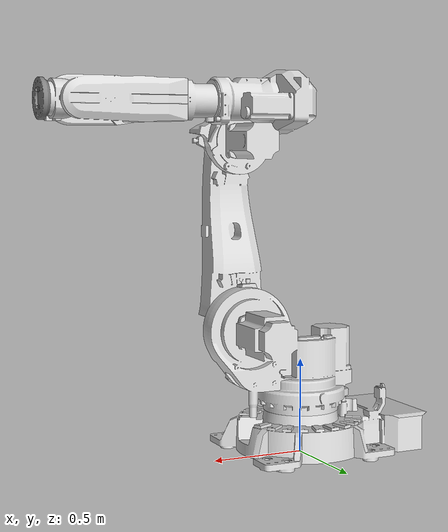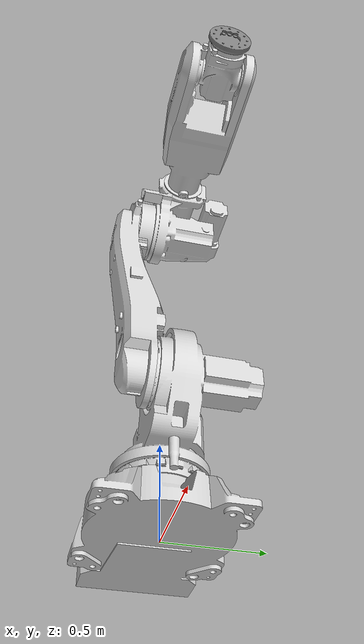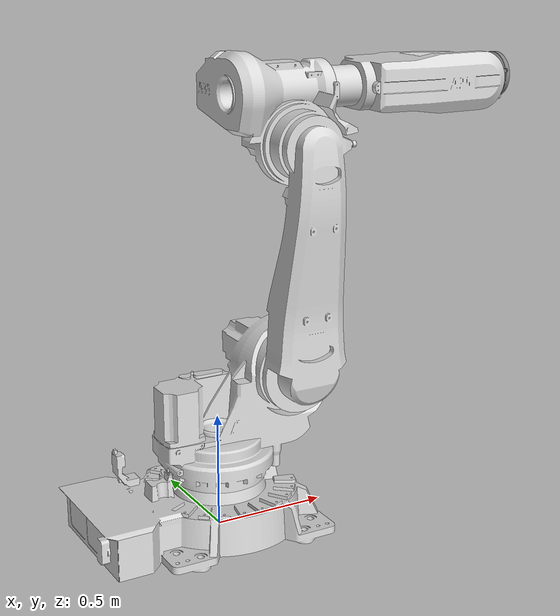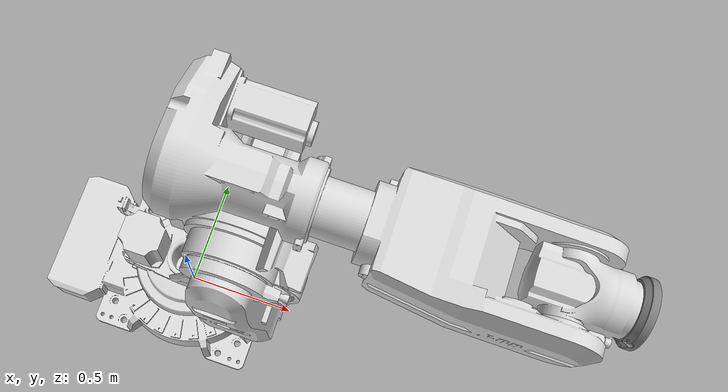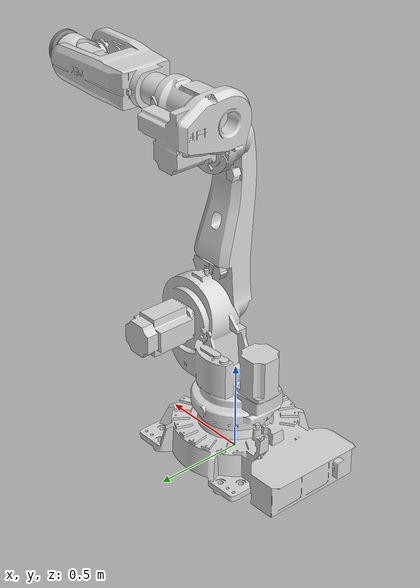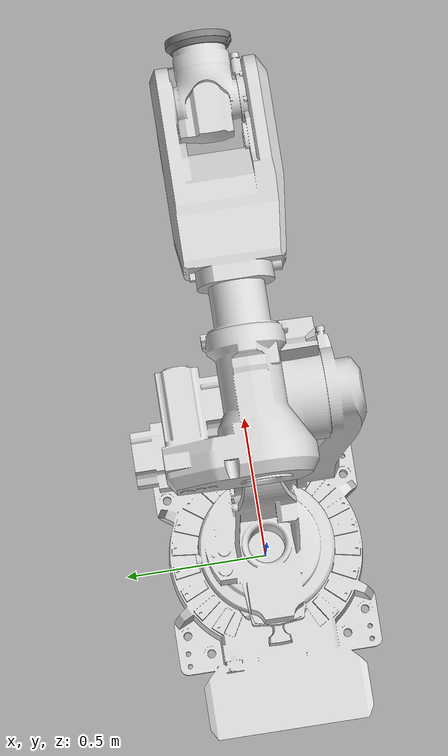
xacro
<?xml version="1.0" ?>
<robot name="irb6620" xmlns:xacro="http://www.ros.org/wiki/xacro">
  <xacro:arg name="use_fake_hardware" default="true"/>
  <xacro:property name="use_fake_hardware" value="$(arg use_fake_hardware)"/>
  <xacro:arg name="rws_ip" default="None"/>
  <xacro:property name="rws_ip" value="$(arg rws_ip)"/>
  <xacro:arg name="rws_port" default="80"/>
  <xacro:property name="rws_port" value="$(arg rws_port)"/>
  <xacro:arg name="configure_via_rws" default="true"/>
  <xacro:property name="configure_via_rws" value="$(arg configure_via_rws)"/>

  <!-- Robot description -->
  <xacro:include filename="$(find abb_irb6620_support)/urdf/materials.xacro" />
  <link name="base_link">
    <inertial>
      <origin xyz="-0.132426271542629 0.00025747943822749576 0.10729619546582686" rpy="0 0 0"/>
      <mass value="776.9359106593752"/>
      <inertia ixx="25.729826" iyy="53.397553" izz="73.957156" ixy="-0.030919" iyz="-0.078877" ixz="0.51906"/>
    </inertial>
    <visual>
      <origin xyz="0 0 0" rpy="0 0 0"/>
      <geometry>
        <mesh filename="package://abb_irb6620_support/meshes/base_link.stl" scale="0.001 0.001 0.001"/>
      </geometry>
      <material name="opaque215215215"/>
    </visual>
    <collision>
      <origin xyz="0 0 0" rpy="0 0 0"/>
      <geometry>
        <mesh filename="package://abb_irb6620_support/meshes/base_link.stl" scale="0.001 0.001 0.001"/>
      </geometry>
    </collision>
  </link>

  <link name="link2_1">
    <inertial>
      <origin xyz="0.0005479770874909917 -0.08783951896438288 0.4192832792190023" rpy="0 0 0"/>
      <mass value="322.6869494051032"/>
      <inertia ixx="31.332255" iyy="32.058389" izz="2.725277" ixy="0.002905" iyz="2.969817" ixz="-0.067522"/>
    </inertial>
    <visual>
      <origin xyz="-0.32 0.1305 -0.68" rpy="0 0 0"/>
      <geometry>
        <mesh filename="package://abb_irb6620_support/meshes/link2_1.stl" scale="0.001 0.001 0.001"/>
      </geometry>
      <material name="opaque215215215"/>
    </visual>
    <collision>
      <origin xyz="-0.32 0.1305 -0.68" rpy="0 0 0"/>
      <geometry>
        <mesh filename="package://abb_irb6620_support/meshes/link2_1.stl" scale="0.001 0.001 0.001"/>
      </geometry>
    </collision>
  </link>

  <link name="link3_1">
    <inertial>
      <origin xyz="-0.04789961325357317 0.23437540848823246 0.11779163280818872" rpy="0 0 0"/>
      <mass value="392.46903681876654"/>
      <inertia ixx="11.726762" iyy="10.861718" izz="11.751196" ixy="1.465206" iyz="-2.045934" ixz="1.592788"/>
    </inertial>
    <visual>
      <origin xyz="-0.32 0.226 -1.655" rpy="0 0 0"/>
      <geometry>
        <mesh filename="package://abb_irb6620_support/meshes/link3_1.stl" scale="0.001 0.001 0.001"/>
      </geometry>
      <material name="opaque215215215"/>
    </visual>
    <collision>
      <origin xyz="-0.32 0.226 -1.655" rpy="0 0 0"/>
      <geometry>
        <mesh filename="package://abb_irb6620_support/meshes/link3_1.stl" scale="0.001 0.001 0.001"/>
      </geometry>
    </collision>
  </link>

  <link name="link4_1">
    <inertial>
      <origin xyz="0.39206968327914915 -0.014153009406367673 -6.0809943929651666e-05" rpy="0 0 0"/>
      <mass value="283.78132224866226"/>
      <inertia ixx="3.961577" iyy="11.46404" izz="13.570946" ixy="0.662055" iyz="0.000528" ixz="-0.007475"/>
    </inertial>
    <visual>
      <origin xyz="-0.502 -0.0 -1.855" rpy="0 0 0"/>
      <geometry>
        <mesh filename="package://abb_irb6620_support/meshes/link4_1.stl" scale="0.001 0.001 0.001"/>
      </geometry>
      <material name="opaque215215215"/>
    </visual>
    <collision>
      <origin xyz="-0.502 -0.0 -1.855" rpy="0 0 0"/>
      <geometry>
        <mesh filename="package://abb_irb6620_support/meshes/link4_1.stl" scale="0.001 0.001 0.001"/>
      </geometry>
    </collision>
  </link>

  <link name="link5_1">
    <inertial>
      <origin xyz="0.03807418429508913 -0.10016333880680821 -0.0013021548163800745" rpy="0 0 0"/>
      <mass value="49.95763546704962"/>
      <inertia ixx="0.204286" iyy="0.370215" izz="0.398271" ixy="0.014389" iyz="-0.00385" ixz="0.00517"/>
    </inertial>
    <visual>
      <origin xyz="-1.207 -0.102 -1.855" rpy="0 0 0"/>
      <geometry>
        <mesh filename="package://abb_irb6620_support/meshes/link5_1.stl" scale="0.001 0.001 0.001"/>
      </geometry>
      <material name="opaque215215215"/>
    </visual>
    <collision>
      <origin xyz="-1.207 -0.102 -1.855" rpy="0 0 0"/>
      <geometry>
        <mesh filename="package://abb_irb6620_support/meshes/link5_1.stl" scale="0.001 0.001 0.001"/>
      </geometry>
    </collision>
  </link>

  <link name="link6_1">
    <inertial>
      <origin xyz="0.013682763984402824 0.0004916127782434797 -8.489689701751679e-05" rpy="0 0 0"/>
      <mass value="7.203563041480472"/>
      <inertia ixx="0.037108" iyy="0.019368" izz="0.019147" ixy="8e-06" iyz="-7e-05" ixz="1e-06"/>
    </inertial>
    <visual>
      <origin xyz="-1.375 0.0 -1.855" rpy="0 0 0"/>
      <geometry>
        <mesh filename="package://abb_irb6620_support/meshes/link6_1.stl" scale="0.001 0.001 0.001"/>
      </geometry>
      <material name="opaque128128128"/>
    </visual>
    <collision>
      <origin xyz="-1.375 0.0 -1.855" rpy="0 0 0"/>
      <geometry>
        <mesh filename="package://abb_irb6620_support/meshes/link6_1.stl" scale="0.001 0.001 0.001"/>
      </geometry>
    </collision>
  </link>

  <link name="link1_1">
    <inertial>
      <origin xyz="0.14890152402063087 0.032537506095083685 0.29973883589665773" rpy="0 0 0"/>
      <mass value="642.4142354132725"/>
      <inertia ixx="27.786175" iyy="44.967832" izz="35.549494" ixy="-2.179688" iyz="-2.614551" ixz="-12.883359"/>
    </inertial>
    <visual>
      <origin xyz="-0.0 -0.0 -0.23" rpy="0 0 0"/>
      <geometry>
        <mesh filename="package://abb_irb6620_support/meshes/link1_1.stl" scale="0.001 0.001 0.001"/>
      </geometry>
      <material name="opaque215215215"/>
    </visual>
    <collision>
      <origin xyz="-0.0 -0.0 -0.23" rpy="0 0 0"/>
      <geometry>
        <mesh filename="package://abb_irb6620_support/meshes/link1_1.stl" scale="0.001 0.001 0.001"/>
      </geometry>
    </collision>
  </link>

  <joint name="joint_2" type="continuous">
    <origin xyz="0.32 -0.1305 0.45" rpy="0 0 0"/>
    <parent link="link1_1"/>
    <child link="link2_1"/>
    <axis xyz="-0.0 -1.0 -0.0"/>
  </joint>

  <joint name="joint_3" type="continuous">
    <origin xyz="0.0 -0.0955 0.975" rpy="0 0 0"/>
    <parent link="link2_1"/>
    <child link="link3_1"/>
    <axis xyz="0.0 -1.0 0.0"/>
  </joint>

  <joint name="joint_4" type="continuous">
    <origin xyz="0.182 0.226 0.2" rpy="0 0 0"/>
    <parent link="link3_1"/>
    <child link="link4_1"/>
    <axis xyz="1.0 0.0 0.0"/>
  </joint>

  <joint name="joint_5" type="continuous">
    <origin xyz="0.705 0.102 0.0" rpy="0 0 0"/>
    <parent link="link4_1"/>
    <child link="link5_1"/>
    <axis xyz="-0.0 -1.0 0.0"/>
  </joint>

  <joint name="joint_6" type="continuous">
    <origin xyz="0.168 -0.102 0.0" rpy="0 0 0"/>
    <parent link="link5_1"/>
    <child link="link6_1"/>
    <axis xyz="-1.0 0.0 0.0"/>
  </joint>

  <joint name="joint_1" type="continuous">
    <origin xyz="0.0 0.0 0.23" rpy="0 0 0"/>
    <parent link="base_link"/>
    <child link="link1_1"/>
    <axis xyz="0.0 0.0 1.0"/>
  </joint>

  <!-- ros2_control -->
  <xacro:include filename="$(find abb_irb6620_support)/urdf/irb6620.ros2_control.xacro" />
  <xacro:abb_ros2_control
    name="ABBMultiInterfaceHardware"
    prefix=""
    use_fake_hardware="${use_fake_hardware}"
    rws_ip="${rws_ip}"
    rws_port="${rws_port}"
    configure_via_rws="${configure_via_rws}"/>

</robot>

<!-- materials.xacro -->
<robot name="irb6620" xmlns:xacro="http://www.ros.org/wiki/xacro" >

<material name="silver_default">
  <color rgba="0.700 0.700 0.700 1.000"/>
</material>
<material name="opaque215215215">
  <color rgba="0.8431372549019608 0.8431372549019608 0.8431372549019608 1.0"/>
</material>
<material name="opaque128128128">
  <color rgba="0.5019607843137255 0.5019607843137255 0.5019607843137255 1.0"/>
</material>

</robot>
